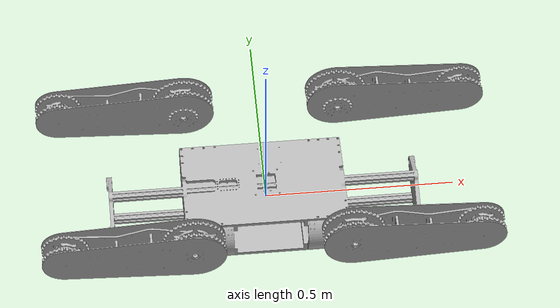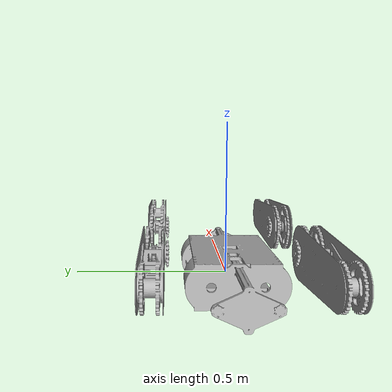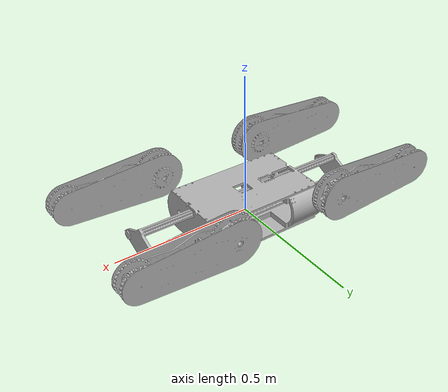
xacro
<?xml version="1.0" ?>
<robot name="assemble" xmlns:xacro="http://www.ros.org/wiki/xacro">

<xacro:include filename="$(find assemble_description)/urdf/materials.xacro" />
<xacro:include filename="$(find assemble_description)/urdf/assemble.trans" />
<xacro:include filename="$(find assemble_description)/urdf/assemble.gazebo" />
<link name="base_link">
  <inertial>
    <origin xyz="-0.0386343413080128 0.005251026561116134 0.1522797253576829" rpy="0 0 0"/>
    <mass value="80.83242778216001"/>
    <inertia ixx="1.436602" iyy="2.904591" izz="3.537297" ixy="0.15751" iyz="-0.000177" ixz="0.315784"/>
  </inertial>
  <visual>
    <origin xyz="0 0 0" rpy="0 0 0"/>
    <geometry>
      <mesh filename="package://assemble_description/meshes/base_link.stl" scale="0.001 0.001 0.001"/>
    </geometry>
    <material name="silver"/>
  </visual>
  <collision>
    <origin xyz="0 0 0" rpy="0 0 0"/>
    <geometry>
      <mesh filename="package://assemble_description/meshes/base_link.stl" scale="0.001 0.001 0.001"/>
    </geometry>
  </collision>
</link>

<link name="Flipper_FR_1">
  <inertial>
    <origin xyz="0.1390663239971142 0.038446211312634676 7.616838517660041e-06" rpy="0 0 0"/>
    <mass value="7.05690661944078"/>
    <inertia ixx="0.012198" iyy="0.155853" izz="0.151857" ixy="0.001425" iyz="0.0" ixz="7e-06"/>
  </inertial>
  <visual>
    <origin xyz="-0.209253 0.261179 -0.112472" rpy="0 0 0"/>
    <geometry>
      <mesh filename="package://assemble_description/meshes/Flipper_FR_1.stl" scale="0.001 0.001 0.001"/>
    </geometry>
    <material name="silver"/>
  </visual>
  <collision>
    <origin xyz="-0.209253 0.261179 -0.112472" rpy="0 0 0"/>
    <geometry>
      <mesh filename="package://assemble_description/meshes/Flipper_FR_1.stl" scale="0.001 0.001 0.001"/>
    </geometry>
  </collision>
</link>

<link name="Flipper_BR_1">
  <inertial>
    <origin xyz="-0.13906534823739614 0.038446211312630874 -6.957968208876064e-06" rpy="0 0 0"/>
    <mass value="7.05690661944078"/>
    <inertia ixx="0.012198" iyy="0.155853" izz="0.151857" ixy="-0.001425" iyz="-0.0" ixz="7e-06"/>
  </inertial>
  <visual>
    <origin xyz="0.203747 0.261179 -0.112472" rpy="0 0 0"/>
    <geometry>
      <mesh filename="package://assemble_description/meshes/Flipper_BR_1.stl" scale="0.001 0.001 0.001"/>
    </geometry>
    <material name="silver"/>
  </visual>
  <collision>
    <origin xyz="0.203747 0.261179 -0.112472" rpy="0 0 0"/>
    <geometry>
      <mesh filename="package://assemble_description/meshes/Flipper_BR_1.stl" scale="0.001 0.001 0.001"/>
    </geometry>
  </collision>
</link>

<link name="Flipper_BL_1">
  <inertial>
    <origin xyz="-0.13906534823739802 -0.03844678761096035 7.61683859620832e-06" rpy="0 0 0"/>
    <mass value="7.05690661944078"/>
    <inertia ixx="0.012198" iyy="0.155853" izz="0.151857" ixy="0.001425" iyz="-0.0" ixz="-7e-06"/>
  </inertial>
  <visual>
    <origin xyz="0.203747 -0.271621 -0.112472" rpy="0 0 0"/>
    <geometry>
      <mesh filename="package://assemble_description/meshes/Flipper_BL_1.stl" scale="0.001 0.001 0.001"/>
    </geometry>
    <material name="silver"/>
  </visual>
  <collision>
    <origin xyz="0.203747 -0.271621 -0.112472" rpy="0 0 0"/>
    <geometry>
      <mesh filename="package://assemble_description/meshes/Flipper_BL_1.stl" scale="0.001 0.001 0.001"/>
    </geometry>
  </collision>
</link>

<link name="Flipper_FL_1">
  <inertial>
    <origin xyz="0.13906632399711208 -0.03844678761095813 -6.957968285467575e-06" rpy="0 0 0"/>
    <mass value="7.05690661944078"/>
    <inertia ixx="0.012198" iyy="0.155853" izz="0.151857" ixy="-0.001425" iyz="0.0" ixz="-7e-06"/>
  </inertial>
  <visual>
    <origin xyz="-0.209253 -0.271621 -0.112472" rpy="0 0 0"/>
    <geometry>
      <mesh filename="package://assemble_description/meshes/Flipper_FL_1.stl" scale="0.001 0.001 0.001"/>
    </geometry>
    <material name="silver"/>
  </visual>
  <collision>
    <origin xyz="-0.209253 -0.271621 -0.112472" rpy="0 0 0"/>
    <geometry>
      <mesh filename="package://assemble_description/meshes/Flipper_FL_1.stl" scale="0.001 0.001 0.001"/>
    </geometry>
  </collision>
</link>

<joint name="Flipper_joint_FR" type="continuous">
  <origin xyz="0.209253 -0.261179 0.112472" rpy="0 0 0"/>
  <parent link="base_link"/>
  <child link="Flipper_FR_1"/>
  <axis xyz="0.0 -1.0 0.0"/>
</joint>

<joint name="Flipper_joint_BR" type="continuous">
  <origin xyz="-0.203747 -0.261179 0.112472" rpy="0 0 0"/>
  <parent link="base_link"/>
  <child link="Flipper_BR_1"/>
  <axis xyz="0.0 -1.0 0.0"/>
</joint>

<joint name="Flipper_joint_BL" type="continuous">
  <origin xyz="-0.203747 0.271621 0.112472" rpy="0 0 0"/>
  <parent link="base_link"/>
  <child link="Flipper_BL_1"/>
  <axis xyz="-0.0 1.0 -0.0"/>
</joint>

<joint name="Flipper_joint_FL" type="continuous">
  <origin xyz="0.209253 0.271621 0.112472" rpy="0 0 0"/>
  <parent link="base_link"/>
  <child link="Flipper_FL_1"/>
  <axis xyz="-0.0 1.0 -0.0"/>
</joint>

</robot>

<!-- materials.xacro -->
<robot name="assemble" xmlns:xacro="http://www.ros.org/wiki/xacro" >

<material name="silver">
  <color rgba="0.700 0.700 0.700 1.000"/>
</material>

</robot>

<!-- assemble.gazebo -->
<robot name="assemble" xmlns:xacro="http://www.ros.org/wiki/xacro" >

<xacro:property name="body_color" value="Gazebo/Silver" />

<gazebo>
  <plugin name="control" filename="libgazebo_ros_control.so"/>
</gazebo>
<gazebo reference="base_link">
  <material>${body_color}</material>
  <mu1>0.2</mu1>
  <mu2>0.2</mu2>
  <selfCollide>true</selfCollide>
  <gravity>true</gravity>
</gazebo>

<gazebo reference="Flipper_FR_1">
  <material>${body_color}</material>
  <mu1>0.2</mu1>
  <mu2>0.2</mu2>
  <selfCollide>true</selfCollide>
</gazebo>

<gazebo reference="Flipper_BR_1">
  <material>${body_color}</material>
  <mu1>0.2</mu1>
  <mu2>0.2</mu2>
  <selfCollide>true</selfCollide>
</gazebo>

<gazebo reference="Flipper_BL_1">
  <material>${body_color}</material>
  <mu1>0.2</mu1>
  <mu2>0.2</mu2>
  <selfCollide>true</selfCollide>
</gazebo>

<gazebo reference="Flipper_FL_1">
  <material>${body_color}</material>
  <mu1>0.2</mu1>
  <mu2>0.2</mu2>
  <selfCollide>true</selfCollide>
</gazebo>

</robot>
